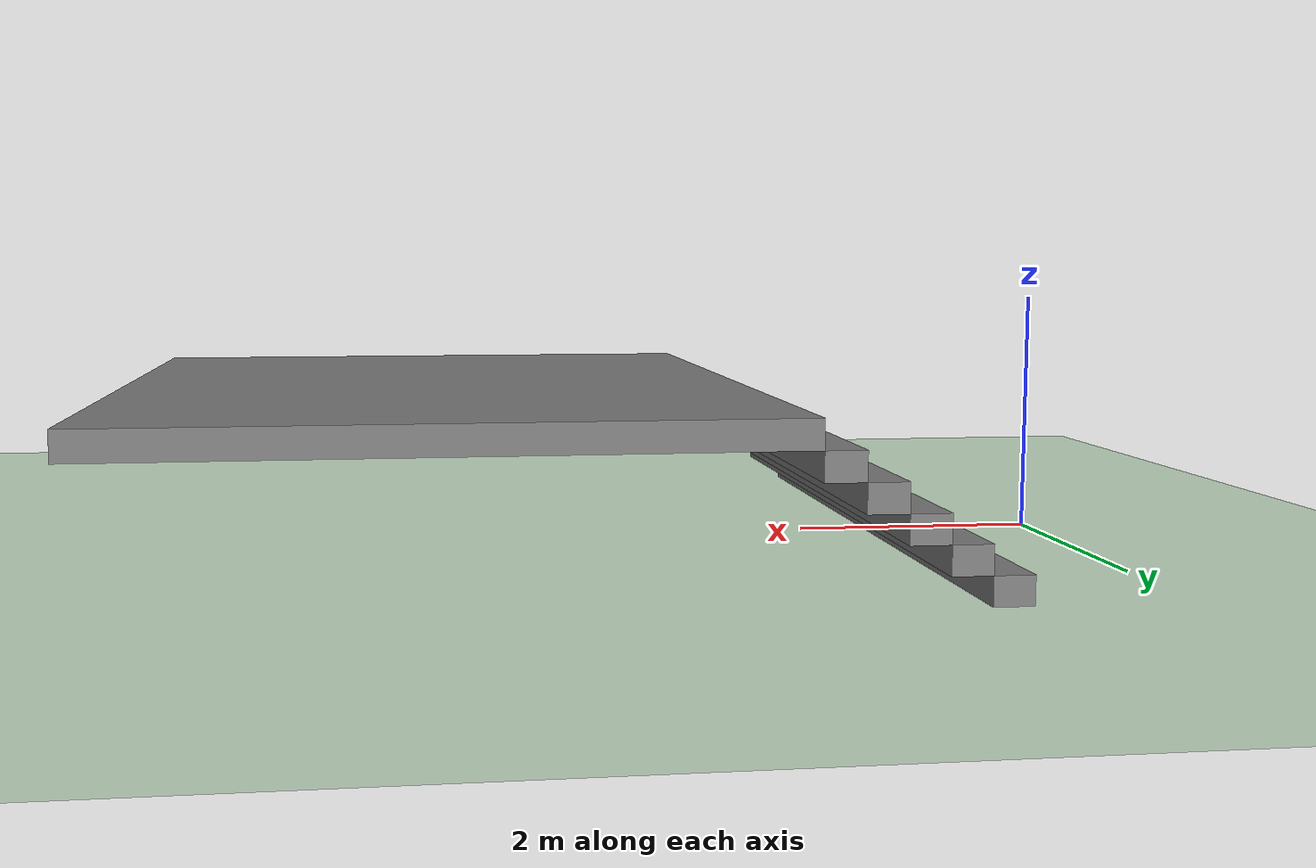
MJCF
<?xml version="1.0" encoding="UTF-8" ?>
<mujoco model="stair_terrain">
    <option gravity="0 0 -9.81" />

    <worldbody>
        <geom name="floor" type="plane" pos="0 0 0" size="15 15 0.1" rgba="0.8 0.9 0.8 1"/>

        <!-- stair  -->
        <body name="staircase" pos="0.8 0 0">
            <geom name="stair1" type="box" pos="0.5 0 0.11" size="0.15 3.0 0.11" rgba="0.5 0.5 0.5 1"/>
            <geom name="stair2" type="box" pos="0.8 0 0.33" size="0.15 3.0 0.11" rgba="0.5 0.5 0.5 1"/>
            <geom name="stair3" type="box" pos="1.1 0 0.55" size="0.15 3.0 0.11" rgba="0.5 0.5 0.5 1"/>
            <geom name="stair4" type="box" pos="1.4 0 0.77" size="0.15 3.0 0.11" rgba="0.5 0.5 0.5 1"/>
            <geom name="stair5" type="box" pos="1.7 0 0.99" size="0.15 3.0 0.11" rgba="0.5 0.5 0.5 1"/>
            <geom name="stair6" type="box" pos="4.35 0 1.21" size="2.5 3.0 0.11" rgba="0.5 0.5 0.5 1"/>
        </body>
    </worldbody>
</mujoco>
